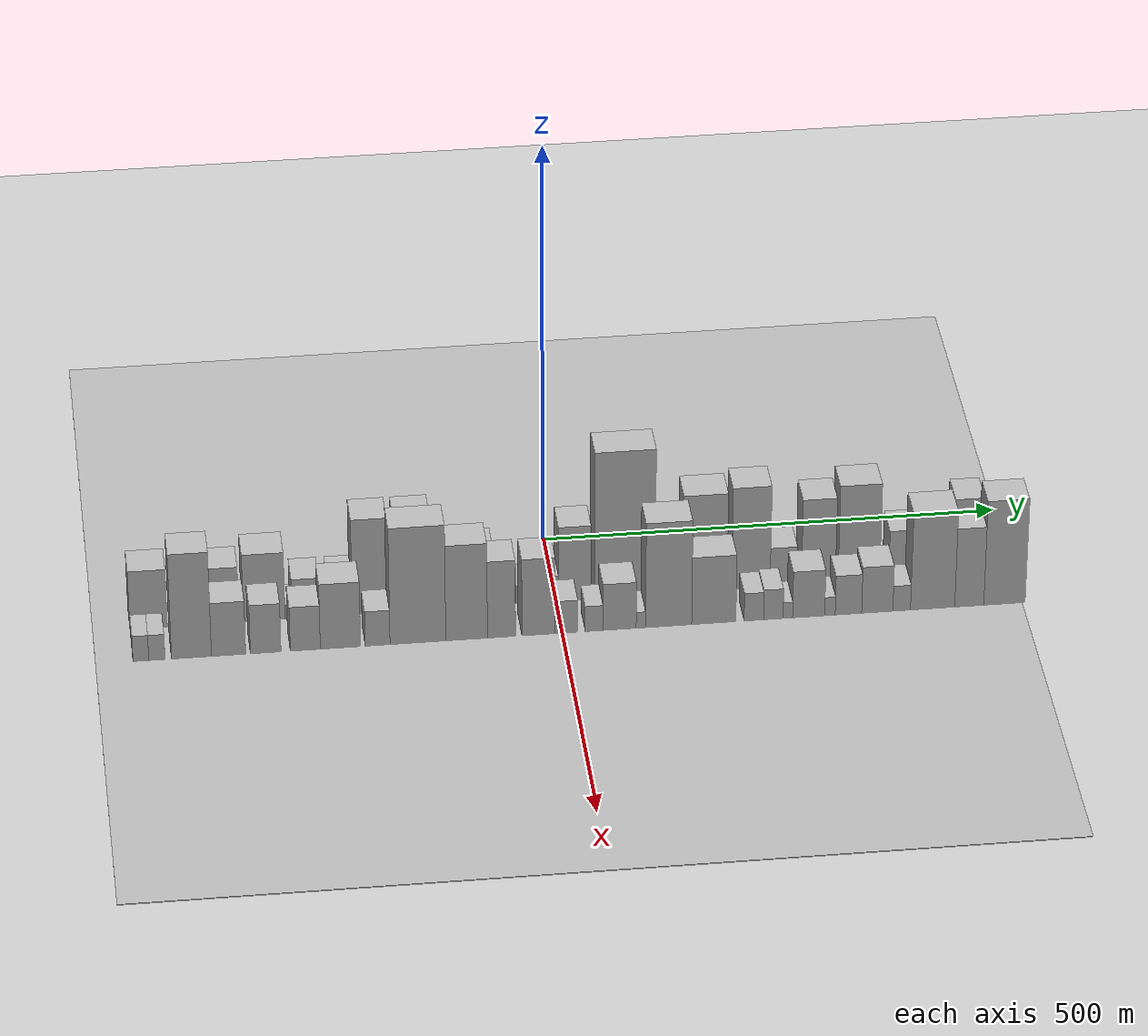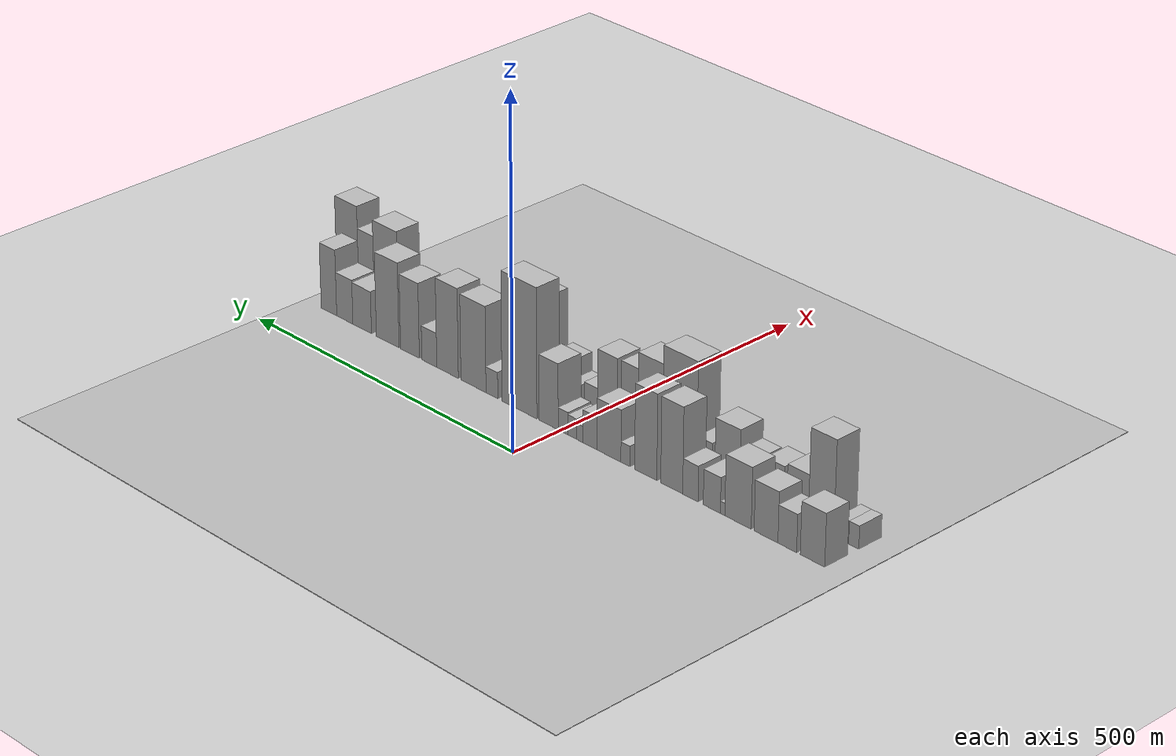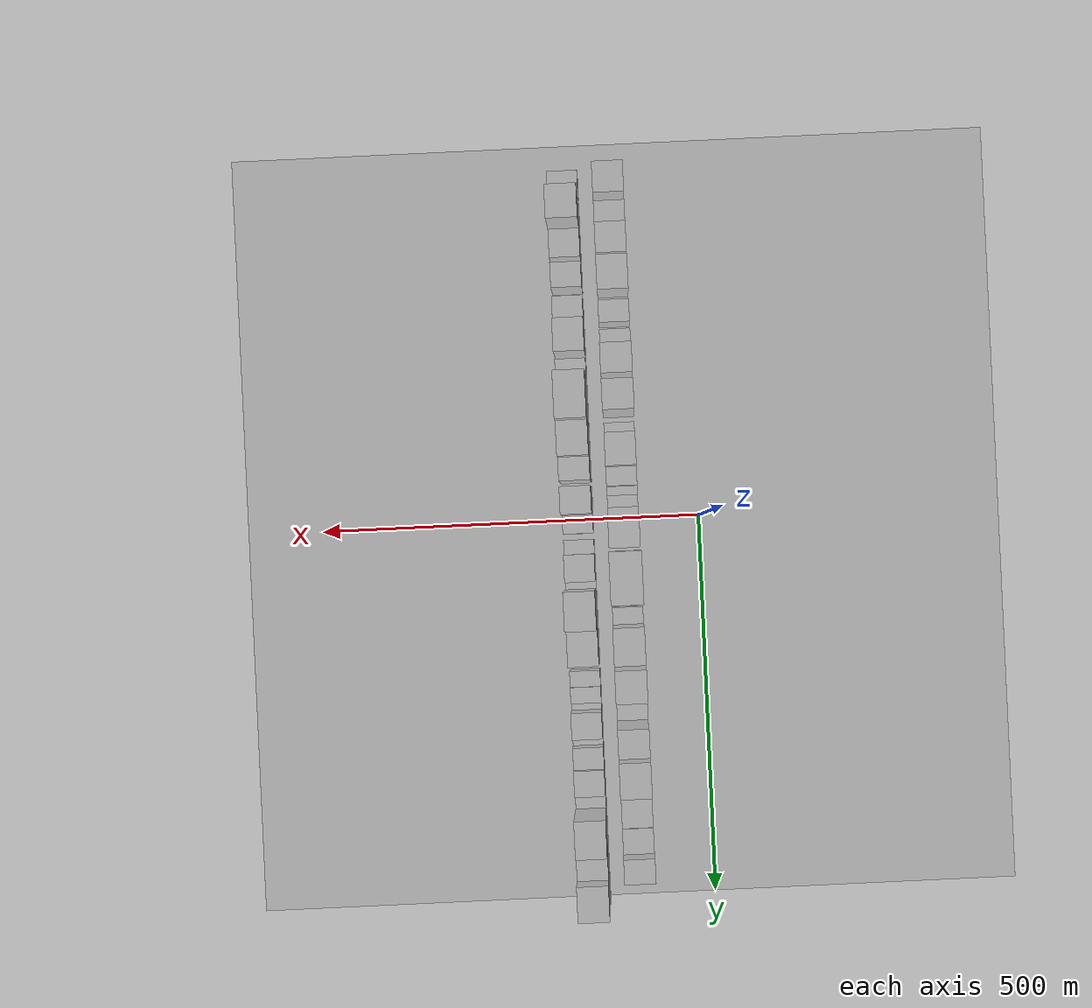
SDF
<sdf version="1.6">
 <world name="default">
  <include><name>ground_plane_1</name><uri>model://HANNAS_ground_plane</uri></include>
  <include>
   <name>ground_plane_2</name>
   <uri>model://HANNAS_ground_plane</uri>
   <pose>100 0 0  0 0 0</pose>
  </include>
  <model name="building_1">
   <static>1</static>
   <pose>100.0000 -439.8858 0 0.000000 0.000000 0.000000</pose>
   <link name="link">
    <pose>0 0 37.50 0 0 0</pose>
    <collision name="collision"><geometry><box><size>40.0000 40.2285 75.0000</size></box></geometry></collision>
    <visual name="visual">
     <cast_shadows>0</cast_shadows>
     <geometry><box><size>40.0000 40.2285 75.0000</size></box></geometry>
     <material>
      <script>
       <uri>model://HANNAS_wall/materials/scripts</uri>
       <uri>model://HANNAS_wall/materials/textures</uri>
       <name>vrc/HANNAS_wall</name>
      </script>
     </material>
    </visual>
   </link>
  </model>
  <model name="building_2">
   <static>1</static>
   <pose>100.0000 -398.2328 0 0.000000 0.000000 0.000000</pose>
   <link name="link">
    <pose>0 0 27.00 0 0 0</pose>
    <collision name="collision"><geometry><box><size>40.0000 31.0776 54.0000</size></box></geometry></collision>
    <visual name="visual">
     <cast_shadows>0</cast_shadows>
     <geometry><box><size>40.0000 31.0776 54.0000</size></box></geometry>
     <material>
      <script>
       <uri>model://HANNAS_wall/materials/scripts</uri>
       <uri>model://HANNAS_wall/materials/textures</uri>
       <name>vrc/HANNAS_wall</name>
      </script>
     </material>
    </visual>
   </link>
  </model>
  <model name="building_3">
   <static>1</static>
   <pose>100.0000 -362.7515 0 0.000000 0.000000 0.000000</pose>
   <link name="link">
    <pose>0 0 36.00 0 0 0</pose>
    <collision name="collision"><geometry><box><size>40.0000 39.8850 72.0000</size></box></geometry></collision>
    <visual name="visual">
     <cast_shadows>0</cast_shadows>
     <geometry><box><size>40.0000 39.8850 72.0000</size></box></geometry>
     <material>
      <script>
       <uri>model://HANNAS_wall/materials/scripts</uri>
       <uri>model://HANNAS_wall/materials/textures</uri>
       <name>vrc/HANNAS_wall</name>
      </script>
     </material>
    </visual>
   </link>
  </model>
  <model name="building_4">
   <static>1</static>
   <pose>100.0000 -315.4273 0 0.000000 0.000000 0.000000</pose>
   <link name="link">
    <pose>0 0 43.50 0 0 0</pose>
    <collision name="collision"><geometry><box><size>40.0000 44.7635 87.0000</size></box></geometry></collision>
    <visual name="visual">
     <cast_shadows>0</cast_shadows>
     <geometry><box><size>40.0000 44.7635 87.0000</size></box></geometry>
     <material>
      <script>
       <uri>model://HANNAS_wall/materials/scripts</uri>
       <uri>model://HANNAS_wall/materials/textures</uri>
       <name>vrc/HANNAS_wall</name>
      </script>
     </material>
    </visual>
   </link>
  </model>
  <model name="building_5">
   <static>1</static>
   <pose>100.0000 -289.2654 0 0.000000 0.000000 0.000000</pose>
   <link name="link">
    <pose>0 0 9.00 0 0 0</pose>
    <collision name="collision"><geometry><box><size>40.0000 7.5603 18.0000</size></box></geometry></collision>
    <visual name="visual">
     <cast_shadows>0</cast_shadows>
     <geometry><box><size>40.0000 7.5603 18.0000</size></box></geometry>
     <material>
      <script>
       <uri>model://HANNAS_wall/materials/scripts</uri>
       <uri>model://HANNAS_wall/materials/textures</uri>
       <name>vrc/HANNAS_wall</name>
      </script>
     </material>
    </visual>
   </link>
  </model>
  <model name="building_6">
   <static>1</static>
   <pose>100.0000 -270.7755 0 0.000000 0.000000 0.000000</pose>
   <link name="link">
    <pose>0 0 25.50 0 0 0</pose>
    <collision name="collision"><geometry><box><size>40.0000 29.4195 51.0000</size></box></geometry></collision>
    <visual name="visual">
     <cast_shadows>0</cast_shadows>
     <geometry><box><size>40.0000 29.4195 51.0000</size></box></geometry>
     <material>
      <script>
       <uri>model://HANNAS_wall/materials/scripts</uri>
       <uri>model://HANNAS_wall/materials/textures</uri>
       <name>vrc/HANNAS_wall</name>
      </script>
     </material>
    </visual>
   </link>
  </model>
  <model name="building_7">
   <static>1</static>
   <pose>100.0000 -233.6913 0 0.000000 0.000000 0.000000</pose>
   <link name="link">
    <pose>0 0 25.50 0 0 0</pose>
    <collision name="collision"><geometry><box><size>40.0000 26.7487 51.0000</size></box></geometry></collision>
    <visual name="visual">
     <cast_shadows>0</cast_shadows>
     <geometry><box><size>40.0000 26.7487 51.0000</size></box></geometry>
     <material>
      <script>
       <uri>model://HANNAS_wall/materials/scripts</uri>
       <uri>model://HANNAS_wall/materials/textures</uri>
       <name>vrc/HANNAS_wall</name>
      </script>
     </material>
    </visual>
   </link>
  </model>
  <model name="building_8">
   <static>1</static>
   <pose>100.0000 -201.1247 0 0.000000 0.000000 0.000000</pose>
   <link name="link">
    <pose>0 0 61.50 0 0 0</pose>
    <collision name="collision"><geometry><box><size>40.0000 38.3845 123.0000</size></box></geometry></collision>
    <visual name="visual">
     <cast_shadows>0</cast_shadows>
     <geometry><box><size>40.0000 38.3845 123.0000</size></box></geometry>
     <material>
      <script>
       <uri>model://HANNAS_wall/materials/scripts</uri>
       <uri>model://HANNAS_wall/materials/textures</uri>
       <name>vrc/HANNAS_wall</name>
      </script>
     </material>
    </visual>
   </link>
  </model>
  <model name="building_9">
   <static>1</static>
   <pose>100.0000 -155.3854 0 0.000000 0.000000 0.000000</pose>
   <link name="link">
    <pose>0 0 61.50 0 0 0</pose>
    <collision name="collision"><geometry><box><size>40.0000 39.0942 123.0000</size></box></geometry></collision>
    <visual name="visual">
     <cast_shadows>0</cast_shadows>
     <geometry><box><size>40.0000 39.0942 123.0000</size></box></geometry>
     <material>
      <script>
       <uri>model://HANNAS_wall/materials/scripts</uri>
       <uri>model://HANNAS_wall/materials/textures</uri>
       <name>vrc/HANNAS_wall</name>
      </script>
     </material>
    </visual>
   </link>
  </model>
  <model name="building_10">
   <static>1</static>
   <pose>100.0000 -118.9862 0 0.000000 0.000000 0.000000</pose>
   <link name="link">
    <pose>0 0 15.00 0 0 0</pose>
    <collision name="collision"><geometry><box><size>40.0000 15.7041 30.0000</size></box></geometry></collision>
    <visual name="visual">
     <cast_shadows>0</cast_shadows>
     <geometry><box><size>40.0000 15.7041 30.0000</size></box></geometry>
     <material>
      <script>
       <uri>model://HANNAS_wall/materials/scripts</uri>
       <uri>model://HANNAS_wall/materials/textures</uri>
       <name>vrc/HANNAS_wall</name>
      </script>
     </material>
    </visual>
   </link>
  </model>
  <model name="building_11">
   <static>1</static>
   <pose>100.0000 -89.5675 0 0.000000 0.000000 0.000000</pose>
   <link name="link">
    <pose>0 0 37.50 0 0 0</pose>
    <collision name="collision"><geometry><box><size>40.0000 43.1334 75.0000</size></box></geometry></collision>
    <visual name="visual">
     <cast_shadows>0</cast_shadows>
     <geometry><box><size>40.0000 43.1334 75.0000</size></box></geometry>
     <material>
      <script>
       <uri>model://HANNAS_wall/materials/scripts</uri>
       <uri>model://HANNAS_wall/materials/textures</uri>
       <name>vrc/HANNAS_wall</name>
      </script>
     </material>
    </visual>
   </link>
  </model>
  <model name="building_12">
   <static>1</static>
   <pose>100.0000 -55.4746 0 0.000000 0.000000 0.000000</pose>
   <link name="link">
    <pose>0 0 24.00 0 0 0</pose>
    <collision name="collision"><geometry><box><size>40.0000 25.0523 48.0000</size></box></geometry></collision>
    <visual name="visual">
     <cast_shadows>0</cast_shadows>
     <geometry><box><size>40.0000 25.0523 48.0000</size></box></geometry>
     <material>
      <script>
       <uri>model://HANNAS_wall/materials/scripts</uri>
       <uri>model://HANNAS_wall/materials/textures</uri>
       <name>vrc/HANNAS_wall</name>
      </script>
     </material>
    </visual>
   </link>
  </model>
  <model name="building_13">
   <static>1</static>
   <pose>100.0000 -36.9720 0 0.000000 0.000000 0.000000</pose>
   <link name="link">
    <pose>0 0 12.00 0 0 0</pose>
    <collision name="collision"><geometry><box><size>40.0000 11.9529 24.0000</size></box></geometry></collision>
    <visual name="visual">
     <cast_shadows>0</cast_shadows>
     <geometry><box><size>40.0000 11.9529 24.0000</size></box></geometry>
     <material>
      <script>
       <uri>model://HANNAS_wall/materials/scripts</uri>
       <uri>model://HANNAS_wall/materials/textures</uri>
       <name>vrc/HANNAS_wall</name>
      </script>
     </material>
    </visual>
   </link>
  </model>
  <model name="building_14">
   <static>1</static>
   <pose>100.0000 -23.1223 0 0.000000 0.000000 0.000000</pose>
   <link name="link">
    <pose>0 0 15.00 0 0 0</pose>
    <collision name="collision"><geometry><box><size>40.0000 15.7465 30.0000</size></box></geometry></collision>
    <visual name="visual">
     <cast_shadows>0</cast_shadows>
     <geometry><box><size>40.0000 15.7465 30.0000</size></box></geometry>
     <material>
      <script>
       <uri>model://HANNAS_wall/materials/scripts</uri>
       <uri>model://HANNAS_wall/materials/textures</uri>
       <name>vrc/HANNAS_wall</name>
      </script>
     </material>
    </visual>
   </link>
  </model>
  <model name="building_15">
   <static>1</static>
   <pose>100.0000 -6.1270 0 0.000000 0.000000 0.000000</pose>
   <link name="link">
    <pose>0 0 16.50 0 0 0</pose>
    <collision name="collision"><geometry><box><size>40.0000 18.2441 33.0000</size></box></geometry></collision>
    <visual name="visual">
     <cast_shadows>0</cast_shadows>
     <geometry><box><size>40.0000 18.2441 33.0000</size></box></geometry>
     <material>
      <script>
       <uri>model://HANNAS_wall/materials/scripts</uri>
       <uri>model://HANNAS_wall/materials/textures</uri>
       <name>vrc/HANNAS_wall</name>
      </script>
     </material>
    </visual>
   </link>
  </model>
  <model name="building_16">
   <static>1</static>
   <pose>100.0000 20.6740 0 0.000000 0.000000 0.000000</pose>
   <link name="link">
    <pose>0 0 48.00 0 0 0</pose>
    <collision name="collision"><geometry><box><size>40.0000 35.3579 96.0000</size></box></geometry></collision>
    <visual name="visual">
     <cast_shadows>0</cast_shadows>
     <geometry><box><size>40.0000 35.3579 96.0000</size></box></geometry>
     <material>
      <script>
       <uri>model://HANNAS_wall/materials/scripts</uri>
       <uri>model://HANNAS_wall/materials/textures</uri>
       <name>vrc/HANNAS_wall</name>
      </script>
     </material>
    </visual>
   </link>
  </model>
  <model name="building_17">
   <static>1</static>
   <pose>100.0000 75.2372 0 0.000000 0.000000 0.000000</pose>
   <link name="link">
    <pose>0 0 94.50 0 0 0</pose>
    <collision name="collision"><geometry><box><size>40.0000 65.7685 189.0000</size></box></geometry></collision>
    <visual name="visual">
     <cast_shadows>0</cast_shadows>
     <geometry><box><size>40.0000 65.7685 189.0000</size></box></geometry>
     <material>
      <script>
       <uri>model://HANNAS_wall/materials/scripts</uri>
       <uri>model://HANNAS_wall/materials/textures</uri>
       <name>vrc/HANNAS_wall</name>
      </script>
     </material>
    </visual>
   </link>
  </model>
  <model name="building_18">
   <static>1</static>
   <pose>100.0000 127.3334 0 0.000000 0.000000 0.000000</pose>
   <link name="link">
    <pose>0 0 19.50 0 0 0</pose>
    <collision name="collision"><geometry><box><size>40.0000 22.4239 39.0000</size></box></geometry></collision>
    <visual name="visual">
     <cast_shadows>0</cast_shadows>
     <geometry><box><size>40.0000 22.4239 39.0000</size></box></geometry>
     <material>
      <script>
       <uri>model://HANNAS_wall/materials/scripts</uri>
       <uri>model://HANNAS_wall/materials/textures</uri>
       <name>vrc/HANNAS_wall</name>
      </script>
     </material>
    </visual>
   </link>
  </model>
  <model name="building_19">
   <static>1</static>
   <pose>100.0000 162.6194 0 0.000000 0.000000 0.000000</pose>
   <link name="link">
    <pose>0 0 63.00 0 0 0</pose>
    <collision name="collision"><geometry><box><size>40.0000 48.1481 126.0000</size></box></geometry></collision>
    <visual name="visual">
     <cast_shadows>0</cast_shadows>
     <geometry><box><size>40.0000 48.1481 126.0000</size></box></geometry>
     <material>
      <script>
       <uri>model://HANNAS_wall/materials/scripts</uri>
       <uri>model://HANNAS_wall/materials/textures</uri>
       <name>vrc/HANNAS_wall</name>
      </script>
     </material>
    </visual>
   </link>
  </model>
  <model name="building_20">
   <static>1</static>
   <pose>100.0000 212.6803 0 0.000000 0.000000 0.000000</pose>
   <link name="link">
    <pose>0 0 66.00 0 0 0</pose>
    <collision name="collision"><geometry><box><size>40.0000 41.9737 132.0000</size></box></geometry></collision>
    <visual name="visual">
     <cast_shadows>0</cast_shadows>
     <geometry><box><size>40.0000 41.9737 132.0000</size></box></geometry>
     <material>
      <script>
       <uri>model://HANNAS_wall/materials/scripts</uri>
       <uri>model://HANNAS_wall/materials/textures</uri>
       <name>vrc/HANNAS_wall</name>
      </script>
     </material>
    </visual>
   </link>
  </model>
  <model name="building_21">
   <static>1</static>
   <pose>100.0000 248.3139 0 0.000000 0.000000 0.000000</pose>
   <link name="link">
    <pose>0 0 25.50 0 0 0</pose>
    <collision name="collision"><geometry><box><size>40.0000 29.2934 51.0000</size></box></geometry></collision>
    <visual name="visual">
     <cast_shadows>0</cast_shadows>
     <geometry><box><size>40.0000 29.2934 51.0000</size></box></geometry>
     <material>
      <script>
       <uri>model://HANNAS_wall/materials/scripts</uri>
       <uri>model://HANNAS_wall/materials/textures</uri>
       <name>vrc/HANNAS_wall</name>
      </script>
     </material>
    </visual>
   </link>
  </model>
  <model name="building_22">
   <static>1</static>
   <pose>100.0000 286.5347 0 0.000000 0.000000 0.000000</pose>
   <link name="link">
    <pose>0 0 55.50 0 0 0</pose>
    <collision name="collision"><geometry><box><size>40.0000 37.1481 111.0000</size></box></geometry></collision>
    <visual name="visual">
     <cast_shadows>0</cast_shadows>
     <geometry><box><size>40.0000 37.1481 111.0000</size></box></geometry>
     <material>
      <script>
       <uri>model://HANNAS_wall/materials/scripts</uri>
       <uri>model://HANNAS_wall/materials/textures</uri>
       <name>vrc/HANNAS_wall</name>
      </script>
     </material>
    </visual>
   </link>
  </model>
  <model name="building_23">
   <static>1</static>
   <pose>100.0000 330.8738 0 0.000000 0.000000 0.000000</pose>
   <link name="link">
    <pose>0 0 63.00 0 0 0</pose>
    <collision name="collision"><geometry><box><size>40.0000 45.5301 126.0000</size></box></geometry></collision>
    <visual name="visual">
     <cast_shadows>0</cast_shadows>
     <geometry><box><size>40.0000 45.5301 126.0000</size></box></geometry>
     <material>
      <script>
       <uri>model://HANNAS_wall/materials/scripts</uri>
       <uri>model://HANNAS_wall/materials/textures</uri>
       <name>vrc/HANNAS_wall</name>
      </script>
     </material>
    </visual>
   </link>
  </model>
  <model name="building_24">
   <static>1</static>
   <pose>100.0000 382.4406 0 0.000000 0.000000 0.000000</pose>
   <link name="link">
    <pose>0 0 31.50 0 0 0</pose>
    <collision name="collision"><geometry><box><size>40.0000 37.6036 63.0000</size></box></geometry></collision>
    <visual name="visual">
     <cast_shadows>0</cast_shadows>
     <geometry><box><size>40.0000 37.6036 63.0000</size></box></geometry>
     <material>
      <script>
       <uri>model://HANNAS_wall/materials/scripts</uri>
       <uri>model://HANNAS_wall/materials/textures</uri>
       <name>vrc/HANNAS_wall</name>
      </script>
     </material>
    </visual>
   </link>
  </model>
  <model name="building_25">
   <static>1</static>
   <pose>100.0000 417.7828 0 0.000000 0.000000 0.000000</pose>
   <link name="link">
    <pose>0 0 33.00 0 0 0</pose>
    <collision name="collision"><geometry><box><size>40.0000 33.0809 66.0000</size></box></geometry></collision>
    <visual name="visual">
     <cast_shadows>0</cast_shadows>
     <geometry><box><size>40.0000 33.0809 66.0000</size></box></geometry>
     <material>
      <script>
       <uri>model://HANNAS_wall/materials/scripts</uri>
       <uri>model://HANNAS_wall/materials/textures</uri>
       <name>vrc/HANNAS_wall</name>
      </script>
     </material>
    </visual>
   </link>
  </model>
  <model name="building_26">
   <static>1</static>
   <pose>100.0000 450.2257 0 0.000000 0.000000 0.000000</pose>
   <link name="link">
    <pose>0 0 49.50 0 0 0</pose>
    <collision name="collision"><geometry><box><size>40.0000 31.8048 99.0000</size></box></geometry></collision>
    <visual name="visual">
     <cast_shadows>0</cast_shadows>
     <geometry><box><size>40.0000 31.8048 99.0000</size></box></geometry>
     <material>
      <script>
       <uri>model://HANNAS_wall/materials/scripts</uri>
       <uri>model://HANNAS_wall/materials/textures</uri>
       <name>vrc/HANNAS_wall</name>
      </script>
     </material>
    </visual>
   </link>
  </model>
  <model name="building_27">
   <static>1</static>
   <pose>160.0000 -451.6467 0 0.000000 0.000000 0.000000</pose>
   <link name="link">
    <pose>0 0 16.50 0 0 0</pose>
    <collision name="collision"><geometry><box><size>40.0000 16.7066 33.0000</size></box></geometry></collision>
    <visual name="visual">
     <cast_shadows>0</cast_shadows>
     <geometry><box><size>40.0000 16.7066 33.0000</size></box></geometry>
     <material>
      <script>
       <uri>model://HANNAS_wall/materials/scripts</uri>
       <uri>model://HANNAS_wall/materials/textures</uri>
       <name>vrc/HANNAS_wall</name>
      </script>
     </material>
    </visual>
   </link>
  </model>
  <model name="building_28">
   <static>1</static>
   <pose>160.0000 -434.6316 0 0.000000 0.000000 0.000000</pose>
   <link name="link">
    <pose>0 0 16.50 0 0 0</pose>
    <collision name="collision"><geometry><box><size>40.0000 17.3236 33.0000</size></box></geometry></collision>
    <visual name="visual">
     <cast_shadows>0</cast_shadows>
     <geometry><box><size>40.0000 17.3236 33.0000</size></box></geometry>
     <material>
      <script>
       <uri>model://HANNAS_wall/materials/scripts</uri>
       <uri>model://HANNAS_wall/materials/textures</uri>
       <name>vrc/HANNAS_wall</name>
      </script>
     </material>
    </visual>
   </link>
  </model>
  <model name="building_29">
   <static>1</static>
   <pose>160.0000 -397.6522 0 0.000000 0.000000 0.000000</pose>
   <link name="link">
    <pose>0 0 67.50 0 0 0</pose>
    <collision name="collision"><geometry><box><size>40.0000 42.6351 135.0000</size></box></geometry></collision>
    <visual name="visual">
     <cast_shadows>0</cast_shadows>
     <geometry><box><size>40.0000 42.6351 135.0000</size></box></geometry>
     <material>
      <script>
       <uri>model://HANNAS_wall/materials/scripts</uri>
       <uri>model://HANNAS_wall/materials/textures</uri>
       <name>vrc/HANNAS_wall</name>
      </script>
     </material>
    </visual>
   </link>
  </model>
  <model name="building_30">
   <static>1</static>
   <pose>160.0000 -358.0482 0 0.000000 0.000000 0.000000</pose>
   <link name="link">
    <pose>0 0 34.50 0 0 0</pose>
    <collision name="collision"><geometry><box><size>40.0000 36.5729 69.0000</size></box></geometry></collision>
    <visual name="visual">
     <cast_shadows>0</cast_shadows>
     <geometry><box><size>40.0000 36.5729 69.0000</size></box></geometry>
     <material>
      <script>
       <uri>model://HANNAS_wall/materials/scripts</uri>
       <uri>model://HANNAS_wall/materials/textures</uri>
       <name>vrc/HANNAS_wall</name>
      </script>
     </material>
    </visual>
   </link>
  </model>
  <model name="building_31">
   <static>1</static>
   <pose>160.0000 -318.4041 0 0.000000 0.000000 0.000000</pose>
   <link name="link">
    <pose>0 0 31.50 0 0 0</pose>
    <collision name="collision"><geometry><box><size>40.0000 32.7152 63.0000</size></box></geometry></collision>
    <visual name="visual">
     <cast_shadows>0</cast_shadows>
     <geometry><box><size>40.0000 32.7152 63.0000</size></box></geometry>
     <material>
      <script>
       <uri>model://HANNAS_wall/materials/scripts</uri>
       <uri>model://HANNAS_wall/materials/textures</uri>
       <name>vrc/HANNAS_wall</name>
      </script>
     </material>
    </visual>
   </link>
  </model>
  <model name="building_32">
   <static>1</static>
   <pose>160.0000 -275.9834 0 0.000000 0.000000 0.000000</pose>
   <link name="link">
    <pose>0 0 28.50 0 0 0</pose>
    <collision name="collision"><geometry><box><size>40.0000 32.1261 57.0000</size></box></geometry></collision>
    <visual name="visual">
     <cast_shadows>0</cast_shadows>
     <geometry><box><size>40.0000 32.1261 57.0000</size></box></geometry>
     <material>
      <script>
       <uri>model://HANNAS_wall/materials/scripts</uri>
       <uri>model://HANNAS_wall/materials/textures</uri>
       <name>vrc/HANNAS_wall</name>
      </script>
     </material>
    </visual>
   </link>
  </model>
  <model name="building_33">
   <static>1</static>
   <pose>160.0000 -238.3431 0 0.000000 0.000000 0.000000</pose>
   <link name="link">
    <pose>0 0 42.00 0 0 0</pose>
    <collision name="collision"><geometry><box><size>40.0000 43.1545 84.0000</size></box></geometry></collision>
    <visual name="visual">
     <cast_shadows>0</cast_shadows>
     <geometry><box><size>40.0000 43.1545 84.0000</size></box></geometry>
     <material>
      <script>
       <uri>model://HANNAS_wall/materials/scripts</uri>
       <uri>model://HANNAS_wall/materials/textures</uri>
       <name>vrc/HANNAS_wall</name>
      </script>
     </material>
    </visual>
   </link>
  </model>
  <model name="building_34">
   <static>1</static>
   <pose>160.0000 -198.4683 0 0.000000 0.000000 0.000000</pose>
   <link name="link">
    <pose>0 0 22.50 0 0 0</pose>
    <collision name="collision"><geometry><box><size>40.0000 26.5952 45.0000</size></box></geometry></collision>
    <visual name="visual">
     <cast_shadows>0</cast_shadows>
     <geometry><box><size>40.0000 26.5952 45.0000</size></box></geometry>
     <material>
      <script>
       <uri>model://HANNAS_wall/materials/scripts</uri>
       <uri>model://HANNAS_wall/materials/textures</uri>
       <name>vrc/HANNAS_wall</name>
      </script>
     </material>
    </visual>
   </link>
  </model>
  <model name="building_35">
   <static>1</static>
   <pose>160.0000 -155.1790 0 0.000000 0.000000 0.000000</pose>
   <link name="link">
    <pose>0 0 75.00 0 0 0</pose>
    <collision name="collision"><geometry><box><size>40.0000 59.9835 150.0000</size></box></geometry></collision>
    <visual name="visual">
     <cast_shadows>0</cast_shadows>
     <geometry><box><size>40.0000 59.9835 150.0000</size></box></geometry>
     <material>
      <script>
       <uri>model://HANNAS_wall/materials/scripts</uri>
       <uri>model://HANNAS_wall/materials/textures</uri>
       <name>vrc/HANNAS_wall</name>
      </script>
     </material>
    </visual>
   </link>
  </model>
  <model name="building_36">
   <static>1</static>
   <pose>160.0000 -102.7965 0 0.000000 0.000000 0.000000</pose>
   <link name="link">
    <pose>0 0 61.50 0 0 0</pose>
    <collision name="collision"><geometry><box><size>40.0000 44.7816 123.0000</size></box></geometry></collision>
    <visual name="visual">
     <cast_shadows>0</cast_shadows>
     <geometry><box><size>40.0000 44.7816 123.0000</size></box></geometry>
     <material>
      <script>
       <uri>model://HANNAS_wall/materials/scripts</uri>
       <uri>model://HANNAS_wall/materials/textures</uri>
       <name>vrc/HANNAS_wall</name>
      </script>
     </material>
    </visual>
   </link>
  </model>
  <model name="building_37">
   <static>1</static>
   <pose>160.0000 -65.3212 0 0.000000 0.000000 0.000000</pose>
   <link name="link">
    <pose>0 0 49.50 0 0 0</pose>
    <collision name="collision"><geometry><box><size>40.0000 30.1689 99.0000</size></box></geometry></collision>
    <visual name="visual">
     <cast_shadows>0</cast_shadows>
     <geometry><box><size>40.0000 30.1689 99.0000</size></box></geometry>
     <material>
      <script>
       <uri>model://HANNAS_wall/materials/scripts</uri>
       <uri>model://HANNAS_wall/materials/textures</uri>
       <name>vrc/HANNAS_wall</name>
      </script>
     </material>
    </visual>
   </link>
  </model>
  <model name="building_38">
   <static>1</static>
   <pose>160.0000 -25.2790 0 0.000000 0.000000 0.000000</pose>
   <link name="link">
    <pose>0 0 49.50 0 0 0</pose>
    <collision name="collision"><geometry><box><size>40.0000 35.9155 99.0000</size></box></geometry></collision>
    <visual name="visual">
     <cast_shadows>0</cast_shadows>
     <geometry><box><size>40.0000 35.9155 99.0000</size></box></geometry>
     <material>
      <script>
       <uri>model://HANNAS_wall/materials/scripts</uri>
       <uri>model://HANNAS_wall/materials/textures</uri>
       <name>vrc/HANNAS_wall</name>
      </script>
     </material>
    </visual>
   </link>
  </model>
  <model name="building_39">
   <static>1</static>
   <pose>160.0000 4.8635 0 0.000000 0.000000 0.000000</pose>
   <link name="link">
    <pose>0 0 21.00 0 0 0</pose>
    <collision name="collision"><geometry><box><size>40.0000 24.3694 42.0000</size></box></geometry></collision>
    <visual name="visual">
     <cast_shadows>0</cast_shadows>
     <geometry><box><size>40.0000 24.3694 42.0000</size></box></geometry>
     <material>
      <script>
       <uri>model://HANNAS_wall/materials/scripts</uri>
       <uri>model://HANNAS_wall/materials/textures</uri>
       <name>vrc/HANNAS_wall</name>
      </script>
     </material>
    </visual>
   </link>
  </model>
  <model name="building_40">
   <static>1</static>
   <pose>160.0000 34.6416 0 0.000000 0.000000 0.000000</pose>
   <link name="link">
    <pose>0 0 16.50 0 0 0</pose>
    <collision name="collision"><geometry><box><size>40.0000 19.1868 33.0000</size></box></geometry></collision>
    <visual name="visual">
     <cast_shadows>0</cast_shadows>
     <geometry><box><size>40.0000 19.1868 33.0000</size></box></geometry>
     <material>
      <script>
       <uri>model://HANNAS_wall/materials/scripts</uri>
       <uri>model://HANNAS_wall/materials/textures</uri>
       <name>vrc/HANNAS_wall</name>
      </script>
     </material>
    </visual>
   </link>
  </model>
  <model name="building_41">
   <static>1</static>
   <pose>160.0000 62.1680 0 0.000000 0.000000 0.000000</pose>
   <link name="link">
    <pose>0 0 30.00 0 0 0</pose>
    <collision name="collision"><geometry><box><size>40.0000 35.8661 60.0000</size></box></geometry></collision>
    <visual name="visual">
     <cast_shadows>0</cast_shadows>
     <geometry><box><size>40.0000 35.8661 60.0000</size></box></geometry>
     <material>
      <script>
       <uri>model://HANNAS_wall/materials/scripts</uri>
       <uri>model://HANNAS_wall/materials/textures</uri>
       <name>vrc/HANNAS_wall</name>
      </script>
     </material>
    </visual>
   </link>
  </model>
  <model name="building_42">
   <static>1</static>
   <pose>160.0000 85.1537 0 0.000000 0.000000 0.000000</pose>
   <link name="link">
    <pose>0 0 10.50 0 0 0</pose>
    <collision name="collision"><geometry><box><size>40.0000 10.1052 21.0000</size></box></geometry></collision>
    <visual name="visual">
     <cast_shadows>0</cast_shadows>
     <geometry><box><size>40.0000 10.1052 21.0000</size></box></geometry>
     <material>
      <script>
       <uri>model://HANNAS_wall/materials/scripts</uri>
       <uri>model://HANNAS_wall/materials/textures</uri>
       <name>vrc/HANNAS_wall</name>
      </script>
     </material>
    </visual>
   </link>
  </model>
  <model name="building_43">
   <static>1</static>
   <pose>160.0000 115.1690 0 0.000000 0.000000 0.000000</pose>
   <link name="link">
    <pose>0 0 67.50 0 0 0</pose>
    <collision name="collision"><geometry><box><size>40.0000 49.9253 135.0000</size></box></geometry></collision>
    <visual name="visual">
     <cast_shadows>0</cast_shadows>
     <geometry><box><size>40.0000 49.9253 135.0000</size></box></geometry>
     <material>
      <script>
       <uri>model://HANNAS_wall/materials/scripts</uri>
       <uri>model://HANNAS_wall/materials/textures</uri>
       <name>vrc/HANNAS_wall</name>
      </script>
     </material>
    </visual>
   </link>
  </model>
  <model name="building_44">
   <static>1</static>
   <pose>160.0000 164.1071 0 0.000000 0.000000 0.000000</pose>
   <link name="link">
    <pose>0 0 43.50 0 0 0</pose>
    <collision name="collision"><geometry><box><size>40.0000 47.9509 87.0000</size></box></geometry></collision>
    <visual name="visual">
     <cast_shadows>0</cast_shadows>
     <geometry><box><size>40.0000 47.9509 87.0000</size></box></geometry>
     <material>
      <script>
       <uri>model://HANNAS_wall/materials/scripts</uri>
       <uri>model://HANNAS_wall/materials/textures</uri>
       <name>vrc/HANNAS_wall</name>
      </script>
     </material>
    </visual>
   </link>
  </model>
  <model name="building_45">
   <static>1</static>
   <pose>160.0000 207.6476 0 0.000000 0.000000 0.000000</pose>
   <link name="link">
    <pose>0 0 18.00 0 0 0</pose>
    <collision name="collision"><geometry><box><size>40.0000 21.1301 36.0000</size></box></geometry></collision>
    <visual name="visual">
     <cast_shadows>0</cast_shadows>
     <geometry><box><size>40.0000 21.1301 36.0000</size></box></geometry>
     <material>
      <script>
       <uri>model://HANNAS_wall/materials/scripts</uri>
       <uri>model://HANNAS_wall/materials/textures</uri>
       <name>vrc/HANNAS_wall</name>
      </script>
     </material>
    </visual>
   </link>
  </model>
  <model name="building_46">
   <static>1</static>
   <pose>160.0000 228.7887 0 0.000000 0.000000 0.000000</pose>
   <link name="link">
    <pose>0 0 19.50 0 0 0</pose>
    <collision name="collision"><geometry><box><size>40.0000 21.1522 39.0000</size></box></geometry></collision>
    <visual name="visual">
     <cast_shadows>0</cast_shadows>
     <geometry><box><size>40.0000 21.1522 39.0000</size></box></geometry>
     <material>
      <script>
       <uri>model://HANNAS_wall/materials/scripts</uri>
       <uri>model://HANNAS_wall/materials/textures</uri>
       <name>vrc/HANNAS_wall</name>
      </script>
     </material>
    </visual>
   </link>
  </model>
  <model name="building_47">
   <static>1</static>
   <pose>160.0000 244.4924 0 0.000000 0.000000 0.000000</pose>
   <link name="link">
    <pose>0 0 10.50 0 0 0</pose>
    <collision name="collision"><geometry><box><size>40.0000 10.2552 21.0000</size></box></geometry></collision>
    <visual name="visual">
     <cast_shadows>0</cast_shadows>
     <geometry><box><size>40.0000 10.2552 21.0000</size></box></geometry>
     <material>
      <script>
       <uri>model://HANNAS_wall/materials/scripts</uri>
       <uri>model://HANNAS_wall/materials/textures</uri>
       <name>vrc/HANNAS_wall</name>
      </script>
     </material>
    </visual>
   </link>
  </model>
  <model name="building_48">
   <static>1</static>
   <pose>160.0000 267.0803 0 0.000000 0.000000 0.000000</pose>
   <link name="link">
    <pose>0 0 30.00 0 0 0</pose>
    <collision name="collision"><geometry><box><size>40.0000 34.9206 60.0000</size></box></geometry></collision>
    <visual name="visual">
     <cast_shadows>0</cast_shadows>
     <geometry><box><size>40.0000 34.9206 60.0000</size></box></geometry>
     <material>
      <script>
       <uri>model://HANNAS_wall/materials/scripts</uri>
       <uri>model://HANNAS_wall/materials/textures</uri>
       <name>vrc/HANNAS_wall</name>
      </script>
     </material>
    </visual>
   </link>
  </model>
  <model name="building_49">
   <static>1</static>
   <pose>160.0000 290.2608 0 0.000000 0.000000 0.000000</pose>
   <link name="link">
    <pose>0 0 12.00 0 0 0</pose>
    <collision name="collision"><geometry><box><size>40.0000 11.4404 24.0000</size></box></geometry></collision>
    <visual name="visual">
     <cast_shadows>0</cast_shadows>
     <geometry><box><size>40.0000 11.4404 24.0000</size></box></geometry>
     <material>
      <script>
       <uri>model://HANNAS_wall/materials/scripts</uri>
       <uri>model://HANNAS_wall/materials/textures</uri>
       <name>vrc/HANNAS_wall</name>
      </script>
     </material>
    </visual>
   </link>
  </model>
  <model name="building_50">
   <static>1</static>
   <pose>160.0000 310.3772 0 0.000000 0.000000 0.000000</pose>
   <link name="link">
    <pose>0 0 25.50 0 0 0</pose>
    <collision name="collision"><geometry><box><size>40.0000 28.7923 51.0000</size></box></geometry></collision>
    <visual name="visual">
     <cast_shadows>0</cast_shadows>
     <geometry><box><size>40.0000 28.7923 51.0000</size></box></geometry>
     <material>
      <script>
       <uri>model://HANNAS_wall/materials/scripts</uri>
       <uri>model://HANNAS_wall/materials/textures</uri>
       <name>vrc/HANNAS_wall</name>
      </script>
     </material>
    </visual>
   </link>
  </model>
  <model name="building_51">
   <static>1</static>
   <pose>160.0000 341.7940 0 0.000000 0.000000 0.000000</pose>
   <link name="link">
    <pose>0 0 30.00 0 0 0</pose>
    <collision name="collision"><geometry><box><size>40.0000 34.0413 60.0000</size></box></geometry></collision>
    <visual name="visual">
     <cast_shadows>0</cast_shadows>
     <geometry><box><size>40.0000 34.0413 60.0000</size></box></geometry>
     <material>
      <script>
       <uri>model://HANNAS_wall/materials/scripts</uri>
       <uri>model://HANNAS_wall/materials/textures</uri>
       <name>vrc/HANNAS_wall</name>
      </script>
     </material>
    </visual>
   </link>
  </model>
  <model name="building_52">
   <static>1</static>
   <pose>160.0000 368.4101 0 0.000000 0.000000 0.000000</pose>
   <link name="link">
    <pose>0 0 16.50 0 0 0</pose>
    <collision name="collision"><geometry><box><size>40.0000 19.1911 33.0000</size></box></geometry></collision>
    <visual name="visual">
     <cast_shadows>0</cast_shadows>
     <geometry><box><size>40.0000 19.1911 33.0000</size></box></geometry>
     <material>
      <script>
       <uri>model://HANNAS_wall/materials/scripts</uri>
       <uri>model://HANNAS_wall/materials/textures</uri>
       <name>vrc/HANNAS_wall</name>
      </script>
     </material>
    </visual>
   </link>
  </model>
  <model name="building_53">
   <static>1</static>
   <pose>160.0000 402.1348 0 0.000000 0.000000 0.000000</pose>
   <link name="link">
    <pose>0 0 63.00 0 0 0</pose>
    <collision name="collision"><geometry><box><size>40.0000 48.2583 126.0000</size></box></geometry></collision>
    <visual name="visual">
     <cast_shadows>0</cast_shadows>
     <geometry><box><size>40.0000 48.2583 126.0000</size></box></geometry>
     <material>
      <script>
       <uri>model://HANNAS_wall/materials/scripts</uri>
       <uri>model://HANNAS_wall/materials/textures</uri>
       <name>vrc/HANNAS_wall</name>
      </script>
     </material>
    </visual>
   </link>
  </model>
  <model name="building_54">
   <static>1</static>
   <pose>160.0000 442.1384 0 0.000000 0.000000 0.000000</pose>
   <link name="link">
    <pose>0 0 51.00 0 0 0</pose>
    <collision name="collision"><geometry><box><size>40.0000 31.7488 102.0000</size></box></geometry></collision>
    <visual name="visual">
     <cast_shadows>0</cast_shadows>
     <geometry><box><size>40.0000 31.7488 102.0000</size></box></geometry>
     <material>
      <script>
       <uri>model://HANNAS_wall/materials/scripts</uri>
       <uri>model://HANNAS_wall/materials/textures</uri>
       <name>vrc/HANNAS_wall</name>
      </script>
     </material>
    </visual>
   </link>
  </model>
  <model name="building_55">
   <static>1</static>
   <pose>160.0000 480.6112 0 0.000000 0.000000 0.000000</pose>
   <link name="link">
    <pose>0 0 67.50 0 0 0</pose>
    <collision name="collision"><geometry><box><size>40.0000 45.1969 135.0000</size></box></geometry></collision>
    <visual name="visual">
     <cast_shadows>0</cast_shadows>
     <geometry><box><size>40.0000 45.1969 135.0000</size></box></geometry>
     <material>
      <script>
       <uri>model://HANNAS_wall/materials/scripts</uri>
       <uri>model://HANNAS_wall/materials/textures</uri>
       <name>vrc/HANNAS_wall</name>
      </script>
     </material>
    </visual>
   </link>
  </model>
 </world>
</sdf>
